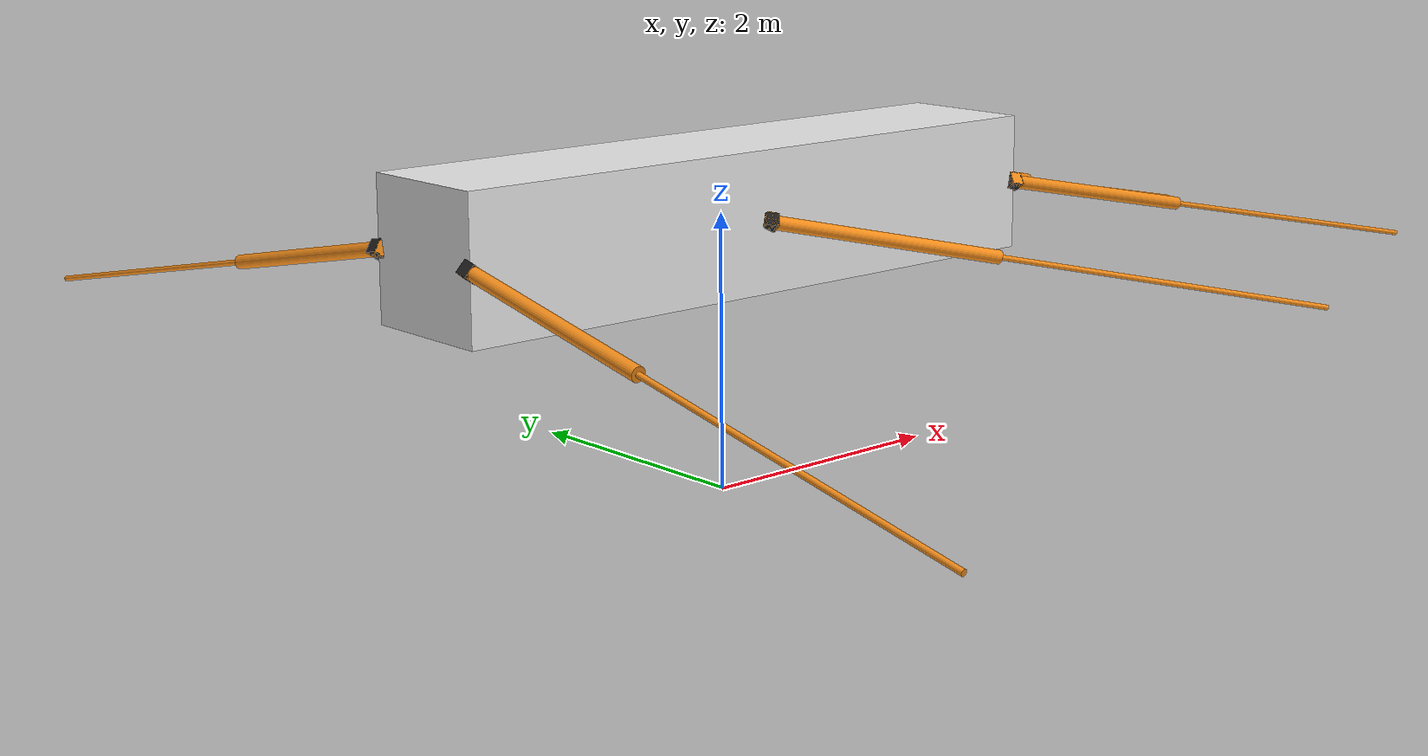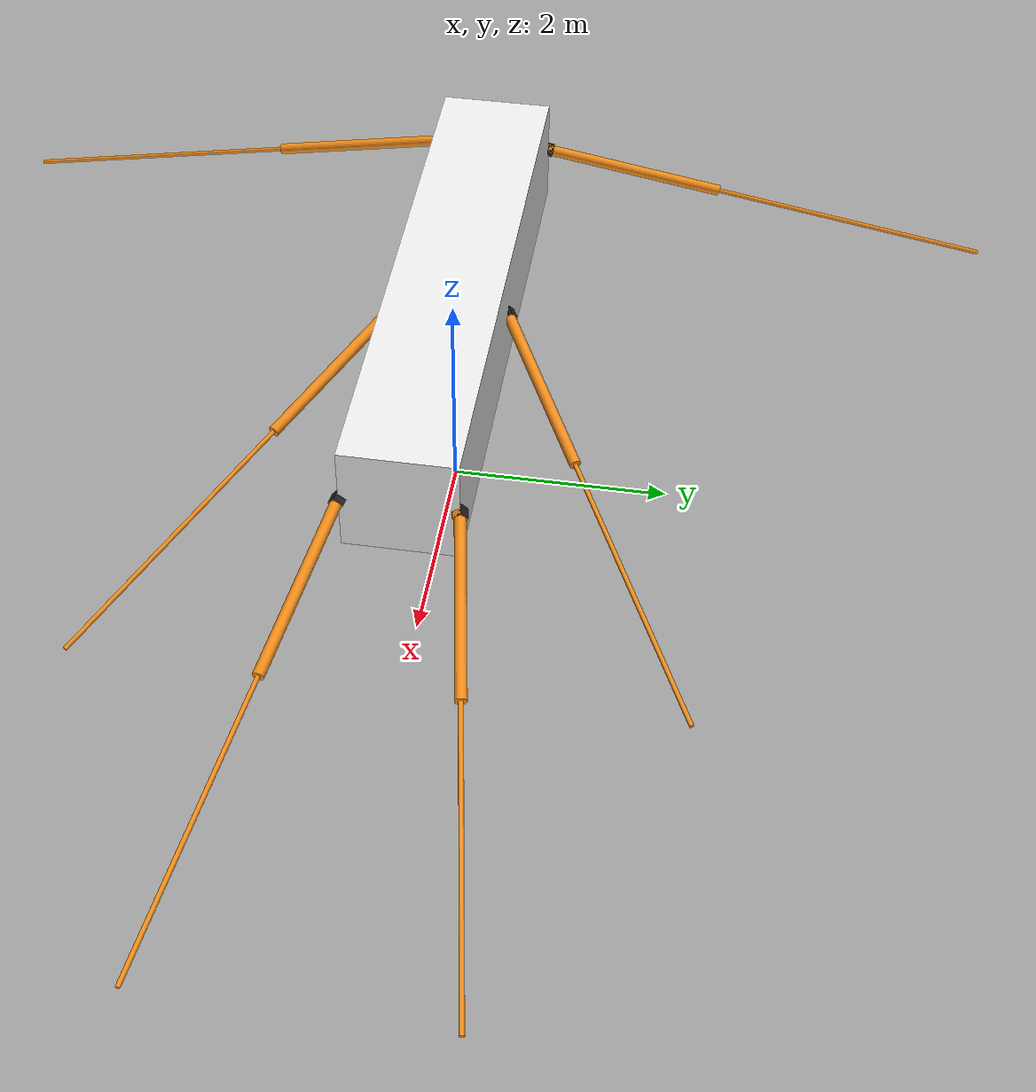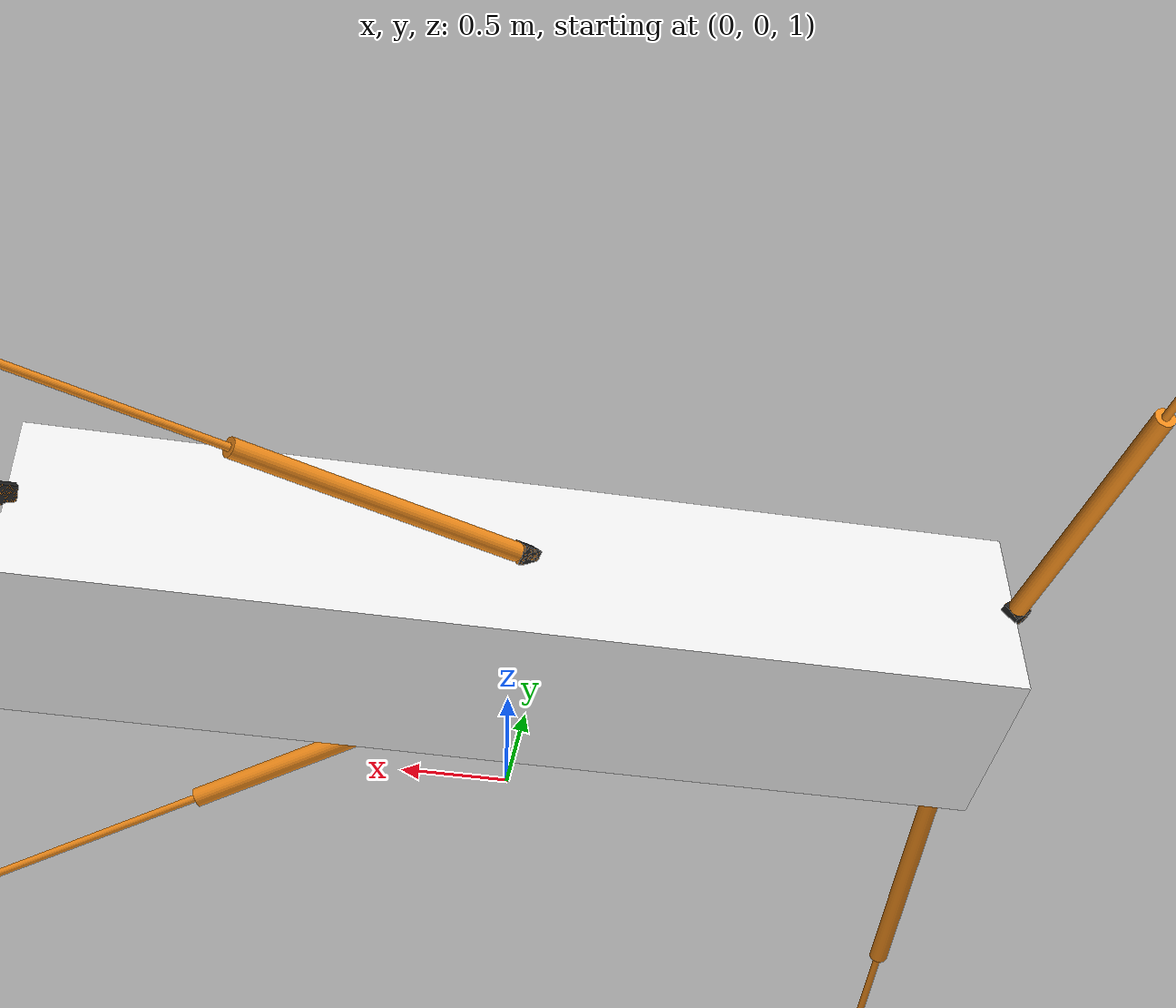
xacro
<?xml version="1.0"?>
<!-- Synthesis of an Ant Leg -->
<robot name="antmodel" xmlns:xacro="http://www.ros.org/wiki/xacro">

  <!-- Constants for robot dimensions -->
  <xacro:property name="PI" value="3.1415926535897931"/>
  <xacro:property name="mass" value="1" /> <!-- arbitrary value for mass -->
  <xacro:property name="width" value="0.1" /> <!-- Square dimensions (widthxwidth) of beams -->
  <xacro:property name="height1" value="5" /> <!-- Link 1 -->
  <xacro:property name="height2" value="0.1" /> <!-- Link 2 -->
  <xacro:property name="height3" value="0.1" /> <!-- Link 3 -->

  <!-- Base transformation parameters -->
  <xacro:property name="AZ" value="4.0127" /> <!-- -1*min(PZ(:,5)) -->
  <xacro:property name="baseX" value="2.5329" /> <!-- link{1,2}(10,1) -->
  <xacro:property name="baseY" value="0.7012" /> <!-- link{1,2}(10,2) -->
  <xacro:property name="baseZ" value="-0.1418" /> <!-- link{1,2}(10,3) -->
  <xacro:property name="baseL" value="2.632" /> <!-- norm(link{1,2}(10,:)) -->
 	<!-- front leg -->
  <xacro:property name="ARF" value="-0.9202" /> <!-- tr2rpy(A{50})(1) -->
  <xacro:property name="APF" value="0.1936" /> <!-- tr2rpy(A{50})(2) -->
  <xacro:property name="AYF" value="0.1716" /> <!-- tr2rpy(A{50})(3) -->
 	<!-- middle leg -->
  <xacro:property name="ARM" value="-0.9202" /> <!-- tr2rpy(A{50})(1) -->
  <xacro:property name="APM" value="0.1936" /> <!-- tr2rpy(A{50})(2) -->
  <xacro:property name="AYM" value="0.5" /> <!-- tr2rpy(A{50})(3) -->
 	<!-- rear leg -->
  <xacro:property name="ARR" value="-0.9202" /> <!-- tr2rpy(A{50})(1) -->
  <xacro:property name="APR" value="0.1936" /> <!-- tr2rpy(A{50})(2) -->
  <xacro:property name="AYR" value="1.6" /> <!-- tr2rpy(A{50})(3) -->

  <!-- Antleg Parameter -->
  <xacro:property name="femur_len" value="1.70"/> <!-- length of femur segment -->
  <xacro:property name="femur_rad" value="0.05"/> <!-- radius of femur segment -->
  <xacro:property name="tibia_len" value="2.60"/> <!-- length of tibia + tarsus segment -->
  <xacro:property name="tibia_rad" value="0.02"/>

  <!-- Body Parameters -->
  <xacro:property name="body_height" value="1" /> <!-- Height of body rectangle -->
  <xacro:property name="body_length" value="5" /> <!-- Length of body rectangle  -->
  <xacro:property name="body_width" value="1" /> <!-- Width of body rectangle  -->
  <xacro:property name="body_mass" value="0.1" /> <!-- Body mass -->

  <!-- Import all Gazebo-customization elements, including Gazebo colors -->
  <xacro:include filename="$(find antmodel_description)/urdf/antmodel.gazebo" />
  <!-- Import Rviz colors -->
  <xacro:include filename="$(find antmodel_description)/urdf/materials.xacro" />

<link name="body">
    <visual>
      <origin xyz="0 0 ${AZ/2}" rpy="0 0 0"/>
      <geometry>
	<box size="${body_length} ${body_width} ${body_height}"/>
      </geometry>
    </visual>

    <collision>
      <origin xyz="0 0 ${AZ/2}" rpy="0 0 0"/>
      <geometry>
	<box size="${body_length} ${body_width} ${body_height}"/>
      </geometry>
    </collision>

    <inertial>
      <origin xyz="0 0 0" rpy="0 0 0"/>
      <mass value="${body_mass}"/>
      <inertia
	  ixx="${body_mass / 12.0 * (body_width*body_width + body_height*body_height)}" ixy="0.0" ixz="0.0"
	  iyy="${body_mass / 12.0 * (body_height*body_height + body_length*body_length)}" iyz="0.0"
	  izz="${body_mass / 12.0 * (body_width*body_width + body_length*body_length)}"/>
    </inertial>
  </link>

   <gazebo reference="body">
   <material>Gazebo/White</material>
  </gazebo>

<xacro:macro name="leg" params="suffix xyz rpy">
  <link name="coxa_${suffix}">
    <collision>
      <origin xyz="0 0 0" rpy="0 0 0"/>
      <geometry>
	<box size="${width} ${width} ${height2}"/>
      </geometry>
    </collision>

    <visual>
      <origin xyz="0 0 0" rpy="0 0 0"/>
      <geometry>
	<box size="${width} ${width} ${height2}"/>
      </geometry>
      <material name="black"/>
    </visual>

    <inertial>
      <origin xyz="0 0 0" rpy="0 0 0"/>
      <mass value="${mass}"/>
      <inertia
	  ixx="${mass / 12.0 * (width*width + height2*height2)}" ixy="0.0" ixz="0.0"
	  iyy="${mass / 12.0 * (height2*height2 + width*width)}" iyz="0.0"
	  izz="${mass / 12.0 * (width*width + width*width)}"/>
    </inertial>
  </link>

    <!-- Link DOF1 -->
  <link name="link1_${suffix}">
    <collision>
      <origin xyz="0 0 0" rpy="0 0 0"/>
      <geometry>
	<box size="${width} ${width} ${height2}"/>
      </geometry>
    </collision>

    <visual>
      <origin xyz="0 0 0" rpy="0 0 0"/>
      <geometry>
	<box size="${width} ${width} ${height2}"/>
      </geometry>
      <material name="black"/>
    </visual>

    <inertial>
      <origin xyz="0 0 0" rpy="0 0 0"/>
      <mass value="${mass}"/>
      <inertia
	  ixx="${mass / 12.0 * (width*width + height2*height2)}" ixy="0.0" ixz="0.0"
	  iyy="${mass / 12.0 * (height2*height2 + width*width)}" iyz="0.0"
	  izz="${mass / 12.0 * (width*width + width*width)}"/>
    </inertial>
  </link>

    <!-- Link DOF2 -->
  <link name="link2_${suffix}">
    <collision>
      <origin xyz="0 0 0" rpy="0 0 0"/>
      <geometry>
	<box size="${width} ${width} ${height3}"/>
      </geometry>
    </collision>

    <visual>
      <origin xyz="0 0 0" rpy="0 0 0"/>
      <geometry>
	<box size="${width} ${width} ${height3}"/>
      </geometry>
      <material name="orange"/>
    </visual>

    <inertial>
      <origin xyz="0 0 0" rpy="0 0 0"/>
      <mass value="${mass}"/>
      <inertia
	  ixx="${mass / 12.0 * (width*width + height3*height3)}" ixy="0.0" ixz="0.0"
	  iyy="${mass / 12.0 * (height3*height3 + width*width)}" iyz="0.0"
	  izz="${mass / 12.0 * (width*width + width*width)}"/>
    </inertial>
  </link>

  <!-- Femur Link -->
  <link name="femur_${suffix}">
    <collision>
      <origin xyz="${femur_len/2} 0 0" rpy="0 ${PI/2} 0"/>
      <geometry>
	<cylinder length="${femur_len}" radius="${femur_rad}"/>
      </geometry>
    </collision>

    <visual>
      <origin xyz="${femur_len/2} 0 0" rpy="0 ${PI/2} 0"/>
      <geometry>
	<cylinder length="${femur_len}" radius="${femur_rad}"/>
      </geometry>
      <material name="orange"/>
    </visual>

    <inertial>
      <origin xyz="${femur_len/2} 0 0" rpy="0 0 0"/>
      <mass value="0.01"/>
      <inertia
	  ixx="${mass / 12.0 * (width*width + height3*height3)}" ixy="0.0" ixz="0.0"
	  iyy="${mass / 12.0 * (height3*height3 + width*width)}" iyz="0.0"
	  izz="${mass / 12.0 * (width*width + width*width)}"/>
    </inertial>
  </link>

  <!-- Tibia Link -->
  <link name="tibia_${suffix}">
    <collision>
      <origin xyz="${tibia_len/2} 0 0" rpy="0 ${PI/2} 0"/>
      <geometry>
	<cylinder length="${tibia_len}" radius="${tibia_rad}"/>
      </geometry>
    </collision>

    <visual>
      <origin xyz="${tibia_len/2} 0 0" rpy="0 ${PI/2} 0"/>
      <geometry>
	<cylinder length="${tibia_len}" radius="${tibia_rad}"/>
      </geometry>
      <material name="orange"/>
    </visual>

    <inertial>
      <origin xyz="${tibia_len/2} 0 0" rpy="0 0 0"/>
      <mass value="0.01"/>
      <inertia
	  ixx="${mass / 12.0 * (width*width + height3*height3)}" ixy="0.0" ixz="0.0"
	  iyy="${mass / 12.0 * (height3*height3 + width*width)}" iyz="0.0"
	  izz="${mass / 12.0 * (width*width + width*width)}"/>
    </inertial>
  </link>

<joint name="j_body_${suffix}" type="fixed">
        <parent link="body"/>
        <child link="coxa_${suffix}"/>
	<origin xyz="${xyz}" rpy="${rpy}" />
</joint>

  <!-- DOF1 = q1 -->
  <joint name="joint1_${suffix}" type="continuous">
    <parent link="coxa_${suffix}"/>
    <child link="link1_${suffix}"/>
    <origin xyz="0 0 0" rpy="0 0 0"/>
    <axis xyz="0 0 1"/>
    <dynamics damping="0.7"/>
  </joint>

  <!-- DOF2 = q2 -->
  <joint name="joint2_${suffix}" type="continuous">
    <parent link="link1_${suffix}"/>
    <child link="link2_${suffix}"/>
    <origin xyz="0 0 0" rpy="${-PI/2} 0 0"/>
    <axis xyz="0 0 1"/>
    <dynamics damping="0.7"/>
  </joint>

  <!-- DOF3 = q3 -->
  <joint name="joint3_${suffix}" type="continuous">
    <parent link="link2_${suffix}"/>
    <child link="femur_${suffix}"/>
    <origin xyz="0 0 0" rpy="${PI/2} 0 0"/>
    <axis xyz="0 0 1"/>
    <dynamics damping="0.7"/>
  </joint>

  <!-- DOF4 = q4 -->
  <joint name="joint4_${suffix}" type="continuous">
    <parent link="femur_${suffix}"/>
    <child link="tibia_${suffix}"/>
    <origin xyz="${femur_len} 0 0" rpy="0 0 0"/>
    <axis xyz="0 0 1"/>
    <dynamics damping="0.7"/>
  </joint>

  <gazebo reference="coxa_${suffix}">
    <material>Gazebo/Blue</material>
  </gazebo>
   <gazebo reference="femur_${suffix}">
    <material>Gazebo/Green</material>
  </gazebo>
   <gazebo reference="link1_${suffix}">
    <material>Gazebo/Orange</material>
  </gazebo>
   <gazebo reference="link2_${suffix}">
    <material>Gazebo/Red</material>
  </gazebo>

  <!-- Transmission to ROS -->
  <transmission name="tran1_${suffix}">
    <type>transmission_interface/SimpleTransmission</type>
    <joint name="joint1_${suffix}">
      <hardwareInterface>EffortJointInterface</hardwareInterface>
    </joint>
    <actuator name="motor1_${suffix}">
      <hardwareInterface>EffortJointInterface</hardwareInterface>
      <mechanicalReduction>1</mechanicalReduction>
    </actuator>
  </transmission>

  <transmission name="tran2_${suffix}">
    <type>transmission_interface/SimpleTransmission</type>
    <joint name="joint2_${suffix}">
      <hardwareInterface>EffortJointInterface</hardwareInterface>
    </joint>
    <actuator name="motor2_${suffix}">
      <hardwareInterface>EffortJointInterface</hardwareInterface>
      <mechanicalReduction>1</mechanicalReduction>
    </actuator>
  </transmission>

  <transmission name="tran3_${suffix}">
    <type>transmission_interface/SimpleTransmission</type>
    <joint name="joint3_${suffix}">
      <hardwareInterface>EffortJointInterface</hardwareInterface>
    </joint>
    <actuator name="motor3_${suffix}">
      <hardwareInterface>EffortJointInterface</hardwareInterface>
      <mechanicalReduction>1</mechanicalReduction>
    </actuator>
  </transmission>
  <transmission name="tran4_${suffix}">
    <type>transmission_interface/SimpleTransmission</type>
    <joint name="joint4_${suffix}">
      <hardwareInterface>EffortJointInterface</hardwareInterface>
    </joint>
    <actuator name="motor4_${suffix}">
      <hardwareInterface>EffortJointInterface</hardwareInterface>
      <mechanicalReduction>1</mechanicalReduction>
    </actuator>
  </transmission>

</xacro:macro>

<xacro:leg suffix="lf" xyz="${body_length/2} ${body_width/2} ${AZ/2}" rpy="${ARF} ${APF} ${AYF}"/>
<xacro:leg suffix="lm" xyz="0 ${body_width/2} ${AZ/2}" rpy="${ARM} ${APM} ${AYM}"/>
<xacro:leg suffix="lr" xyz="${-body_length/2} ${body_width/2} ${AZ/2}" rpy="${ARR} ${APR} ${AYR}"/>

<xacro:leg suffix="rf" xyz="${body_length/2} ${-body_width/2} ${AZ/2}" rpy="${PI-ARF} ${APF} ${-AYF}"/>
<xacro:leg suffix="rm" xyz="0 ${-body_width/2} ${AZ/2}" rpy="${PI-ARM} ${APM} ${-AYM}"/>
<xacro:leg suffix="rr" xyz="${-body_length/2} ${-body_width/2} ${AZ/2}" rpy="${PI-ARR} ${APR} ${-AYR}"/>

</robot>
